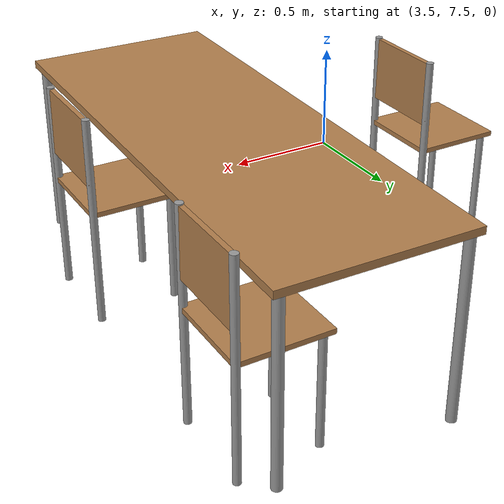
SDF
<sdf version="1.7">
 <world name="default">
  <model name="table_tavail_clone_1">
   <link name="link">
    <inertial>
     <mass>1</mass>
     <inertia><ixx>1</ixx><ixy>0</ixy><ixz>0</ixz><iyy>1</iyy><iyz>0</iyz><izz>1</izz></inertia>
    </inertial>
    <visual name="back_right_leg">
     <pose>-0.97 -0.34 0.5 0 -0 0</pose>
     <geometry><cylinder><radius>0.02</radius><length>0.75</length></cylinder></geometry>
     <material>
      <script><uri>file://media/materials/scripts/gazebo.material</uri><name>Gazebo/Grey</name></script>
      <shader type="pixel"><normal_map>__default__</normal_map></shader>
      <ambient>0.3 0.3 0.3 1</ambient>
      <diffuse>0.7 0.7 0.7 1</diffuse>
      <specular>0.01 0.01 0.01 1</specular>
      <emissive>0 0 0 1</emissive>
     </material>
    </visual>
    <visual name="front_right_leg">
     <pose>0.97 -0.34 0.5 0 -0 0</pose>
     <geometry><cylinder><radius>0.02</radius><length>0.75</length></cylinder></geometry>
     <material>
      <script><uri>file://media/materials/scripts/gazebo.material</uri><name>Gazebo/Grey</name></script>
      <shader type="pixel"><normal_map>__default__</normal_map></shader>
      <ambient>0.3 0.3 0.3 1</ambient>
      <diffuse>0.7 0.7 0.7 1</diffuse>
      <specular>0.01 0.01 0.01 1</specular>
      <emissive>0 0 0 1</emissive>
     </material>
    </visual>
    <visual name="back_left_leg">
     <pose>-0.97 0.34 0.5 0 -0 0</pose>
     <geometry><cylinder><radius>0.02</radius><length>0.75</length></cylinder></geometry>
     <material>
      <script><uri>file://media/materials/scripts/gazebo.material</uri><name>Gazebo/Grey</name></script>
      <shader type="pixel"><normal_map>__default__</normal_map></shader>
      <ambient>0.3 0.3 0.3 1</ambient>
      <diffuse>0.7 0.7 0.7 1</diffuse>
      <specular>0.01 0.01 0.01 1</specular>
      <emissive>0 0 0 1</emissive>
     </material>
    </visual>
    <visual name="front_left_leg">
     <pose>0.97 0.34 0.5 0 -0 0</pose>
     <geometry><cylinder><radius>0.02</radius><length>0.75</length></cylinder></geometry>
     <material>
      <script><uri>file://media/materials/scripts/gazebo.material</uri><name>Gazebo/Grey</name></script>
      <shader type="pixel"><normal_map>__default__</normal_map></shader>
      <ambient>0.3 0.3 0.3 1</ambient>
      <diffuse>0.7 0.7 0.7 1</diffuse>
      <specular>0.01 0.01 0.01 1</specular>
      <emissive>0 0 0 1</emissive>
     </material>
    </visual>
    <visual name="visual1">
     <pose>0 0 0.87 0 -0 0</pose>
     <geometry><box><size>2 0.75 0.03</size></box></geometry>
     <material>
      <script><uri>file://media/materials/scripts/gazebo.material</uri><name>Gazebo/Wood</name></script>
      <shader type="pixel"><normal_map>__default__</normal_map></shader>
      <ambient>1 1 1 1</ambient>
      <diffuse>1 1 1 1</diffuse>
      <specular>0.2 0.2 0.2 1</specular>
      <emissive>0 0 0 1</emissive>
     </material>
    </visual>
    <collision name="back_left_leg">
     <pose>-0.97 0.34 0.5 0 -0 0</pose>
     <geometry><cylinder><radius>0.02</radius><length>0.75</length></cylinder></geometry>
     <surface>
      <friction>
       <ode><mu>1</mu><mu2>1</mu2><fdir1>0 0 0</fdir1><slip1>0</slip1><slip2>0</slip2></ode>
       <torsional>
        <coefficient>1</coefficient>
        <patch_radius>0</patch_radius>
        <surface_radius>0</surface_radius>
        <use_patch_radius>1</use_patch_radius>
        <ode><slip>0</slip></ode>
       </torsional>
      </friction>
      <bounce><restitution_coefficient>0</restitution_coefficient><threshold>1e+06</threshold></bounce>
      <contact>
       <collide_without_contact>0</collide_without_contact>
       <collide_without_contact_bitmask>1</collide_without_contact_bitmask>
       <collide_bitmask>1</collide_bitmask>
       <ode>
        <soft_cfm>0</soft_cfm>
        <soft_erp>0.2</soft_erp>
        <kp>1e+13</kp>
        <kd>1</kd>
        <max_vel>0.01</max_vel>
        <min_depth>0</min_depth>
       </ode>
       <bullet>
        <split_impulse>1</split_impulse>
        <split_impulse_penetration_threshold>-0.01</split_impulse_penetration_threshold>
        <soft_cfm>0</soft_cfm>
        <soft_erp>0.2</soft_erp>
        <kp>1e+13</kp>
        <kd>1</kd>
       </bullet>
      </contact>
     </surface>
    </collision>
    <collision name="surface">
     <pose>0 0 0.87 0 -0 0</pose>
     <geometry><box><size>2 0.75 0.03</size></box></geometry>
     <surface>
      <friction>
       <ode><mu>0.6</mu><mu2>0.6</mu2><fdir1>0 0 0</fdir1><slip1>0</slip1><slip2>0</slip2></ode>
       <torsional>
        <coefficient>1</coefficient>
        <patch_radius>0</patch_radius>
        <surface_radius>0</surface_radius>
        <use_patch_radius>1</use_patch_radius>
        <ode><slip>0</slip></ode>
       </torsional>
      </friction>
      <bounce><restitution_coefficient>0</restitution_coefficient><threshold>1e+06</threshold></bounce>
      <contact>
       <collide_without_contact>0</collide_without_contact>
       <collide_without_contact_bitmask>1</collide_without_contact_bitmask>
       <collide_bitmask>1</collide_bitmask>
       <ode>
        <soft_cfm>0</soft_cfm>
        <soft_erp>0.2</soft_erp>
        <kp>1e+13</kp>
        <kd>1</kd>
        <max_vel>0.01</max_vel>
        <min_depth>0</min_depth>
       </ode>
       <bullet>
        <split_impulse>1</split_impulse>
        <split_impulse_penetration_threshold>-0.01</split_impulse_penetration_threshold>
        <soft_cfm>0</soft_cfm>
        <soft_erp>0.2</soft_erp>
        <kp>1e+13</kp>
        <kd>1</kd>
       </bullet>
      </contact>
     </surface>
    </collision>
    <collision name="back_right_leg">
     <pose>-0.97 -0.34 0.5 0 -0 0</pose>
     <geometry><cylinder><radius>0.02</radius><length>0.75</length></cylinder></geometry>
     <surface>
      <friction>
       <ode><mu>1</mu><mu2>1</mu2><fdir1>0 0 0</fdir1><slip1>0</slip1><slip2>0</slip2></ode>
       <torsional>
        <coefficient>1</coefficient>
        <patch_radius>0</patch_radius>
        <surface_radius>0</surface_radius>
        <use_patch_radius>1</use_patch_radius>
        <ode><slip>0</slip></ode>
       </torsional>
      </friction>
      <bounce><restitution_coefficient>0</restitution_coefficient><threshold>1e+06</threshold></bounce>
      <contact>
       <collide_without_contact>0</collide_without_contact>
       <collide_without_contact_bitmask>1</collide_without_contact_bitmask>
       <collide_bitmask>1</collide_bitmask>
       <ode>
        <soft_cfm>0</soft_cfm>
        <soft_erp>0.2</soft_erp>
        <kp>1e+13</kp>
        <kd>1</kd>
        <max_vel>0.01</max_vel>
        <min_depth>0</min_depth>
       </ode>
       <bullet>
        <split_impulse>1</split_impulse>
        <split_impulse_penetration_threshold>-0.01</split_impulse_penetration_threshold>
        <soft_cfm>0</soft_cfm>
        <soft_erp>0.2</soft_erp>
        <kp>1e+13</kp>
        <kd>1</kd>
       </bullet>
      </contact>
     </surface>
    </collision>
    <collision name="front_left_leg">
     <pose>0.97 0.34 0.5 0 -0 0</pose>
     <geometry><cylinder><radius>0.02</radius><length>0.75</length></cylinder></geometry>
     <surface>
      <friction>
       <ode><mu>1</mu><mu2>1</mu2><fdir1>0 0 0</fdir1><slip1>0</slip1><slip2>0</slip2></ode>
       <torsional>
        <coefficient>1</coefficient>
        <patch_radius>0</patch_radius>
        <surface_radius>0</surface_radius>
        <use_patch_radius>1</use_patch_radius>
        <ode><slip>0</slip></ode>
       </torsional>
      </friction>
      <bounce><restitution_coefficient>0</restitution_coefficient><threshold>1e+06</threshold></bounce>
      <contact>
       <collide_without_contact>0</collide_without_contact>
       <collide_without_contact_bitmask>1</collide_without_contact_bitmask>
       <collide_bitmask>1</collide_bitmask>
       <ode>
        <soft_cfm>0</soft_cfm>
        <soft_erp>0.2</soft_erp>
        <kp>1e+13</kp>
        <kd>1</kd>
        <max_vel>0.01</max_vel>
        <min_depth>0</min_depth>
       </ode>
       <bullet>
        <split_impulse>1</split_impulse>
        <split_impulse_penetration_threshold>-0.01</split_impulse_penetration_threshold>
        <soft_cfm>0</soft_cfm>
        <soft_erp>0.2</soft_erp>
        <kp>1e+13</kp>
        <kd>1</kd>
       </bullet>
      </contact>
     </surface>
    </collision>
    <collision name="front_right_leg">
     <pose>0.97 0.34 0.5 0 -0 0</pose>
     <geometry><cylinder><radius>0.02</radius><length>0.75</length></cylinder></geometry>
     <surface>
      <friction>
       <ode><mu>1</mu><mu2>1</mu2><fdir1>0 0 0</fdir1><slip1>0</slip1><slip2>0</slip2></ode>
       <torsional>
        <coefficient>1</coefficient>
        <patch_radius>0</patch_radius>
        <surface_radius>0</surface_radius>
        <use_patch_radius>1</use_patch_radius>
        <ode><slip>0</slip></ode>
       </torsional>
      </friction>
      <bounce><restitution_coefficient>0</restitution_coefficient><threshold>1e+06</threshold></bounce>
      <contact>
       <collide_without_contact>0</collide_without_contact>
       <collide_without_contact_bitmask>1</collide_without_contact_bitmask>
       <collide_bitmask>1</collide_bitmask>
       <ode>
        <soft_cfm>0</soft_cfm>
        <soft_erp>0.2</soft_erp>
        <kp>1e+13</kp>
        <kd>1</kd>
        <max_vel>0.01</max_vel>
        <min_depth>0</min_depth>
       </ode>
       <bullet>
        <split_impulse>1</split_impulse>
        <split_impulse_penetration_threshold>-0.01</split_impulse_penetration_threshold>
        <soft_cfm>0</soft_cfm>
        <soft_erp>0.2</soft_erp>
        <kp>1e+13</kp>
        <kd>1</kd>
       </bullet>
      </contact>
     </surface>
    </collision>
   </link>
   <static>1</static>
   <pose>4.63587 8.55934 -0.134214 0 -0 1.55</pose>
  </model>
  <model name="chair_mod_0_clone_10">
   <link name="link">
    <inertial>
     <mass>1</mass>
     <inertia><ixx>1</ixx><ixy>0</ixy><ixz>0</ixz><iyy>1</iyy><iyz>0</iyz><izz>1</izz></inertia>
    </inertial>
    <visual name="back_right_leg">
     <pose>-0.17 -0.17 0.42 0 -0 0</pose>
     <geometry><cylinder><radius>0.015</radius><length>0.84</length></cylinder></geometry>
     <material>
      <script><uri>file://media/materials/scripts/gazebo.material</uri><name>Gazebo/Grey</name></script>
      <shader type="pixel"><normal_map>__default__</normal_map></shader>
      <ambient>0.3 0.3 0.3 1</ambient>
      <diffuse>0.7 0.7 0.7 1</diffuse>
      <specular>0.01 0.01 0.01 1</specular>
      <emissive>0 0 0 1</emissive>
     </material>
    </visual>
    <visual name="back_left_leg">
     <pose>-0.15 0.15 0.23 0 -0 0</pose>
     <geometry><cylinder><radius>0.015</radius><length>0.46</length></cylinder></geometry>
     <material>
      <script><uri>file://media/materials/scripts/gazebo.material</uri><name>Gazebo/Grey</name></script>
      <shader type="pixel"><normal_map>__default__</normal_map></shader>
      <ambient>0.3 0.3 0.3 1</ambient>
      <diffuse>0.7 0.7 0.7 1</diffuse>
      <specular>0.01 0.01 0.01 1</specular>
      <emissive>0 0 0 1</emissive>
     </material>
    </visual>
    <visual name="visual1">
     <pose>0 0 0.46 0 -0 0</pose>
     <geometry><box><size>0.36 0.36 0.02</size></box></geometry>
     <material>
      <script><uri>file://media/materials/scripts/gazebo.material</uri><name>Gazebo/Wood</name></script>
      <shader type="pixel"><normal_map>__default__</normal_map></shader>
      <ambient>1 1 1 1</ambient>
      <diffuse>1 1 1 1</diffuse>
      <specular>0.2 0.2 0.2 1</specular>
      <emissive>0 0 0 1</emissive>
     </material>
    </visual>
    <visual name="ModelPreview_1::link::visual_5">
     <pose>0 -0.17 0.705 1.56 -0 0</pose>
     <geometry><box><size>0.36 0.26 0.02</size></box></geometry>
     <material>
      <script><uri>file://media/materials/scripts/gazebo.material</uri><name>Gazebo/Wood</name></script>
      <shader type="pixel"><normal_map>__default__</normal_map></shader>
      <ambient>1 1 1 1</ambient>
      <diffuse>1 1 1 1</diffuse>
      <specular>0.2 0.2 0.2 1</specular>
      <emissive>0 0 0 1</emissive>
     </material>
    </visual>
    <visual name="front_left_leg">
     <pose>0.15 0.15 0.23 0 -0 0</pose>
     <geometry><cylinder><radius>0.015</radius><length>0.46</length></cylinder></geometry>
     <material>
      <script><uri>file://media/materials/scripts/gazebo.material</uri><name>Gazebo/Grey</name></script>
      <shader type="pixel"><normal_map>__default__</normal_map></shader>
      <ambient>0.3 0.3 0.3 1</ambient>
      <diffuse>0.7 0.7 0.7 1</diffuse>
      <specular>0.01 0.01 0.01 1</specular>
      <emissive>0 0 0 1</emissive>
     </material>
    </visual>
    <visual name="front_right_leg">
     <pose>0.17 -0.17 0.42 0 -0 0</pose>
     <geometry><cylinder><radius>0.015</radius><length>0.84</length></cylinder></geometry>
     <material>
      <script><uri>file://media/materials/scripts/gazebo.material</uri><name>Gazebo/Grey</name></script>
      <shader type="pixel"><normal_map>__default__</normal_map></shader>
      <ambient>0.3 0.3 0.3 1</ambient>
      <diffuse>0.7 0.7 0.7 1</diffuse>
      <specular>0.01 0.01 0.01 1</specular>
      <emissive>0 0 0 1</emissive>
     </material>
    </visual>
    <collision name="front_right_leg">
     <pose>0.17 -0.17 0.42 0 -0 0</pose>
     <geometry><cylinder><radius>0.015</radius><length>0.84</length></cylinder></geometry>
     <surface>
      <friction>
       <ode><mu>1</mu><mu2>1</mu2><fdir1>0 0 0</fdir1><slip1>0</slip1><slip2>0</slip2></ode>
       <torsional>
        <coefficient>1</coefficient>
        <patch_radius>0</patch_radius>
        <surface_radius>0</surface_radius>
        <use_patch_radius>1</use_patch_radius>
        <ode><slip>0</slip></ode>
       </torsional>
      </friction>
      <bounce><restitution_coefficient>0</restitution_coefficient><threshold>1e+06</threshold></bounce>
      <contact>
       <collide_without_contact>0</collide_without_contact>
       <collide_without_contact_bitmask>1</collide_without_contact_bitmask>
       <collide_bitmask>1</collide_bitmask>
       <ode>
        <soft_cfm>0</soft_cfm>
        <soft_erp>0.2</soft_erp>
        <kp>1e+13</kp>
        <kd>1</kd>
        <max_vel>0.01</max_vel>
        <min_depth>0</min_depth>
       </ode>
       <bullet>
        <split_impulse>1</split_impulse>
        <split_impulse_penetration_threshold>-0.01</split_impulse_penetration_threshold>
        <soft_cfm>0</soft_cfm>
        <soft_erp>0.2</soft_erp>
        <kp>1e+13</kp>
        <kd>1</kd>
       </bullet>
      </contact>
     </surface>
    </collision>
    <collision name="back_right_leg">
     <pose>-0.17 -0.17 0.42 0 -0 0</pose>
     <geometry><cylinder><radius>0.015</radius><length>0.84</length></cylinder></geometry>
     <surface>
      <friction>
       <ode><mu>1</mu><mu2>1</mu2><fdir1>0 0 0</fdir1><slip1>0</slip1><slip2>0</slip2></ode>
       <torsional>
        <coefficient>1</coefficient>
        <patch_radius>0</patch_radius>
        <surface_radius>0</surface_radius>
        <use_patch_radius>1</use_patch_radius>
        <ode><slip>0</slip></ode>
       </torsional>
      </friction>
      <bounce><restitution_coefficient>0</restitution_coefficient><threshold>1e+06</threshold></bounce>
      <contact>
       <collide_without_contact>0</collide_without_contact>
       <collide_without_contact_bitmask>1</collide_without_contact_bitmask>
       <collide_bitmask>1</collide_bitmask>
       <ode>
        <soft_cfm>0</soft_cfm>
        <soft_erp>0.2</soft_erp>
        <kp>1e+13</kp>
        <kd>1</kd>
        <max_vel>0.01</max_vel>
        <min_depth>0</min_depth>
       </ode>
       <bullet>
        <split_impulse>1</split_impulse>
        <split_impulse_penetration_threshold>-0.01</split_impulse_penetration_threshold>
        <soft_cfm>0</soft_cfm>
        <soft_erp>0.2</soft_erp>
        <kp>1e+13</kp>
        <kd>1</kd>
       </bullet>
      </contact>
     </surface>
    </collision>
    <collision name="back_left_leg">
     <pose>-0.15 0.15 0.23 0 -0 0</pose>
     <geometry><cylinder><radius>0.015</radius><length>0.46</length></cylinder></geometry>
     <surface>
      <friction>
       <ode><mu>1</mu><mu2>1</mu2><fdir1>0 0 0</fdir1><slip1>0</slip1><slip2>0</slip2></ode>
       <torsional>
        <coefficient>1</coefficient>
        <patch_radius>0</patch_radius>
        <surface_radius>0</surface_radius>
        <use_patch_radius>1</use_patch_radius>
        <ode><slip>0</slip></ode>
       </torsional>
      </friction>
      <bounce><restitution_coefficient>0</restitution_coefficient><threshold>1e+06</threshold></bounce>
      <contact>
       <collide_without_contact>0</collide_without_contact>
       <collide_without_contact_bitmask>1</collide_without_contact_bitmask>
       <collide_bitmask>1</collide_bitmask>
       <ode>
        <soft_cfm>0</soft_cfm>
        <soft_erp>0.2</soft_erp>
        <kp>1e+13</kp>
        <kd>1</kd>
        <max_vel>0.01</max_vel>
        <min_depth>0</min_depth>
       </ode>
       <bullet>
        <split_impulse>1</split_impulse>
        <split_impulse_penetration_threshold>-0.01</split_impulse_penetration_threshold>
        <soft_cfm>0</soft_cfm>
        <soft_erp>0.2</soft_erp>
        <kp>1e+13</kp>
        <kd>1</kd>
       </bullet>
      </contact>
     </surface>
    </collision>
    <collision name="collision_6">
     <pose>0 -0.17 0.705 1.56 -0 0</pose>
     <geometry><box><size>0.36 0.26 0.03</size></box></geometry>
     <surface>
      <friction>
       <ode><mu>1</mu><mu2>1</mu2><fdir1>0 0 0</fdir1><slip1>0</slip1><slip2>0</slip2></ode>
       <torsional>
        <coefficient>1</coefficient>
        <patch_radius>0</patch_radius>
        <surface_radius>0</surface_radius>
        <use_patch_radius>1</use_patch_radius>
        <ode><slip>0</slip></ode>
       </torsional>
      </friction>
      <bounce><restitution_coefficient>0</restitution_coefficient><threshold>1e+06</threshold></bounce>
      <contact>
       <collide_without_contact>0</collide_without_contact>
       <collide_without_contact_bitmask>1</collide_without_contact_bitmask>
       <collide_bitmask>1</collide_bitmask>
       <ode>
        <soft_cfm>0</soft_cfm>
        <soft_erp>0.2</soft_erp>
        <kp>1e+13</kp>
        <kd>1</kd>
        <max_vel>0.01</max_vel>
        <min_depth>0</min_depth>
       </ode>
       <bullet>
        <split_impulse>1</split_impulse>
        <split_impulse_penetration_threshold>-0.01</split_impulse_penetration_threshold>
        <soft_cfm>0</soft_cfm>
        <soft_erp>0.2</soft_erp>
        <kp>1e+13</kp>
        <kd>1</kd>
       </bullet>
      </contact>
     </surface>
    </collision>
    <collision name="surface">
     <pose>0 0 0.46 0 -0 0</pose>
     <geometry><box><size>0.36 0.36 0.03</size></box></geometry>
     <surface>
      <friction>
       <ode><mu>0.6</mu><mu2>0.6</mu2><fdir1>0 0 0</fdir1><slip1>0</slip1><slip2>0</slip2></ode>
       <torsional>
        <coefficient>1</coefficient>
        <patch_radius>0</patch_radius>
        <surface_radius>0</surface_radius>
        <use_patch_radius>1</use_patch_radius>
        <ode><slip>0</slip></ode>
       </torsional>
      </friction>
      <bounce><restitution_coefficient>0</restitution_coefficient><threshold>1e+06</threshold></bounce>
      <contact>
       <collide_without_contact>0</collide_without_contact>
       <collide_without_contact_bitmask>1</collide_without_contact_bitmask>
       <collide_bitmask>1</collide_bitmask>
       <ode>
        <soft_cfm>0</soft_cfm>
        <soft_erp>0.2</soft_erp>
        <kp>1e+13</kp>
        <kd>1</kd>
        <max_vel>0.01</max_vel>
        <min_depth>0</min_depth>
       </ode>
       <bullet>
        <split_impulse>1</split_impulse>
        <split_impulse_penetration_threshold>-0.01</split_impulse_penetration_threshold>
        <soft_cfm>0</soft_cfm>
        <soft_erp>0.2</soft_erp>
        <kp>1e+13</kp>
        <kd>1</kd>
       </bullet>
      </contact>
     </surface>
    </collision>
    <collision name="front_left_leg">
     <pose>0.15 0.15 0.23 0 -0 0</pose>
     <geometry><cylinder><radius>0.015</radius><length>0.46</length></cylinder></geometry>
     <surface>
      <friction>
       <ode><mu>1</mu><mu2>1</mu2><fdir1>0 0 0</fdir1><slip1>0</slip1><slip2>0</slip2></ode>
       <torsional>
        <coefficient>1</coefficient>
        <patch_radius>0</patch_radius>
        <surface_radius>0</surface_radius>
        <use_patch_radius>1</use_patch_radius>
        <ode><slip>0</slip></ode>
       </torsional>
      </friction>
      <bounce><restitution_coefficient>0</restitution_coefficient><threshold>1e+06</threshold></bounce>
      <contact>
       <collide_without_contact>0</collide_without_contact>
       <collide_without_contact_bitmask>1</collide_without_contact_bitmask>
       <collide_bitmask>1</collide_bitmask>
       <ode>
        <soft_cfm>0</soft_cfm>
        <soft_erp>0.2</soft_erp>
        <kp>1e+13</kp>
        <kd>1</kd>
        <max_vel>0.01</max_vel>
        <min_depth>0</min_depth>
       </ode>
       <bullet>
        <split_impulse>1</split_impulse>
        <split_impulse_penetration_threshold>-0.01</split_impulse_penetration_threshold>
        <soft_cfm>0</soft_cfm>
        <soft_erp>0.2</soft_erp>
        <kp>1e+13</kp>
        <kd>1</kd>
       </bullet>
      </contact>
     </surface>
    </collision>
   </link>
   <static>1</static>
   <pose>3.56521 8.4054 0 0 -0 1.5708</pose>
  </model>
  <model name="chair_mod_0_clone_11">
   <link name="link">
    <inertial>
     <mass>1</mass>
     <inertia><ixx>1</ixx><ixy>0</ixy><ixz>0</ixz><iyy>1</iyy><iyz>0</iyz><izz>1</izz></inertia>
    </inertial>
    <visual name="back_right_leg">
     <pose>-0.17 -0.17 0.42 0 -0 0</pose>
     <geometry><cylinder><radius>0.015</radius><length>0.84</length></cylinder></geometry>
     <material>
      <script><uri>file://media/materials/scripts/gazebo.material</uri><name>Gazebo/Grey</name></script>
      <shader type="pixel"><normal_map>__default__</normal_map></shader>
      <ambient>0.3 0.3 0.3 1</ambient>
      <diffuse>0.7 0.7 0.7 1</diffuse>
      <specular>0.01 0.01 0.01 1</specular>
      <emissive>0 0 0 1</emissive>
     </material>
    </visual>
    <visual name="back_left_leg">
     <pose>-0.15 0.15 0.23 0 -0 0</pose>
     <geometry><cylinder><radius>0.015</radius><length>0.46</length></cylinder></geometry>
     <material>
      <script><uri>file://media/materials/scripts/gazebo.material</uri><name>Gazebo/Grey</name></script>
      <shader type="pixel"><normal_map>__default__</normal_map></shader>
      <ambient>0.3 0.3 0.3 1</ambient>
      <diffuse>0.7 0.7 0.7 1</diffuse>
      <specular>0.01 0.01 0.01 1</specular>
      <emissive>0 0 0 1</emissive>
     </material>
    </visual>
    <visual name="visual1">
     <pose>0 0 0.46 0 -0 0</pose>
     <geometry><box><size>0.36 0.36 0.02</size></box></geometry>
     <material>
      <script><uri>file://media/materials/scripts/gazebo.material</uri><name>Gazebo/Wood</name></script>
      <shader type="pixel"><normal_map>__default__</normal_map></shader>
      <ambient>1 1 1 1</ambient>
      <diffuse>1 1 1 1</diffuse>
      <specular>0.2 0.2 0.2 1</specular>
      <emissive>0 0 0 1</emissive>
     </material>
    </visual>
    <visual name="ModelPreview_1::link::visual_5">
     <pose>0 -0.17 0.705 1.56 -0 0</pose>
     <geometry><box><size>0.36 0.26 0.02</size></box></geometry>
     <material>
      <script><uri>file://media/materials/scripts/gazebo.material</uri><name>Gazebo/Wood</name></script>
      <shader type="pixel"><normal_map>__default__</normal_map></shader>
      <ambient>1 1 1 1</ambient>
      <diffuse>1 1 1 1</diffuse>
      <specular>0.2 0.2 0.2 1</specular>
      <emissive>0 0 0 1</emissive>
     </material>
    </visual>
    <visual name="front_left_leg">
     <pose>0.15 0.15 0.23 0 -0 0</pose>
     <geometry><cylinder><radius>0.015</radius><length>0.46</length></cylinder></geometry>
     <material>
      <script><uri>file://media/materials/scripts/gazebo.material</uri><name>Gazebo/Grey</name></script>
      <shader type="pixel"><normal_map>__default__</normal_map></shader>
      <ambient>0.3 0.3 0.3 1</ambient>
      <diffuse>0.7 0.7 0.7 1</diffuse>
      <specular>0.01 0.01 0.01 1</specular>
      <emissive>0 0 0 1</emissive>
     </material>
    </visual>
    <visual name="front_right_leg">
     <pose>0.17 -0.17 0.42 0 -0 0</pose>
     <geometry><cylinder><radius>0.015</radius><length>0.84</length></cylinder></geometry>
     <material>
      <script><uri>file://media/materials/scripts/gazebo.material</uri><name>Gazebo/Grey</name></script>
      <shader type="pixel"><normal_map>__default__</normal_map></shader>
      <ambient>0.3 0.3 0.3 1</ambient>
      <diffuse>0.7 0.7 0.7 1</diffuse>
      <specular>0.01 0.01 0.01 1</specular>
      <emissive>0 0 0 1</emissive>
     </material>
    </visual>
    <collision name="front_right_leg">
     <pose>0.17 -0.17 0.42 0 -0 0</pose>
     <geometry><cylinder><radius>0.015</radius><length>0.84</length></cylinder></geometry>
     <surface>
      <friction>
       <ode><mu>1</mu><mu2>1</mu2><fdir1>0 0 0</fdir1><slip1>0</slip1><slip2>0</slip2></ode>
       <torsional>
        <coefficient>1</coefficient>
        <patch_radius>0</patch_radius>
        <surface_radius>0</surface_radius>
        <use_patch_radius>1</use_patch_radius>
        <ode><slip>0</slip></ode>
       </torsional>
      </friction>
      <bounce><restitution_coefficient>0</restitution_coefficient><threshold>1e+06</threshold></bounce>
      <contact>
       <collide_without_contact>0</collide_without_contact>
       <collide_without_contact_bitmask>1</collide_without_contact_bitmask>
       <collide_bitmask>1</collide_bitmask>
       <ode>
        <soft_cfm>0</soft_cfm>
        <soft_erp>0.2</soft_erp>
        <kp>1e+13</kp>
        <kd>1</kd>
        <max_vel>0.01</max_vel>
        <min_depth>0</min_depth>
       </ode>
       <bullet>
        <split_impulse>1</split_impulse>
        <split_impulse_penetration_threshold>-0.01</split_impulse_penetration_threshold>
        <soft_cfm>0</soft_cfm>
        <soft_erp>0.2</soft_erp>
        <kp>1e+13</kp>
        <kd>1</kd>
       </bullet>
      </contact>
     </surface>
    </collision>
    <collision name="back_right_leg">
     <pose>-0.17 -0.17 0.42 0 -0 0</pose>
     <geometry><cylinder><radius>0.015</radius><length>0.84</length></cylinder></geometry>
     <surface>
      <friction>
       <ode><mu>1</mu><mu2>1</mu2><fdir1>0 0 0</fdir1><slip1>0</slip1><slip2>0</slip2></ode>
       <torsional>
        <coefficient>1</coefficient>
        <patch_radius>0</patch_radius>
        <surface_radius>0</surface_radius>
        <use_patch_radius>1</use_patch_radius>
        <ode><slip>0</slip></ode>
       </torsional>
      </friction>
      <bounce><restitution_coefficient>0</restitution_coefficient><threshold>1e+06</threshold></bounce>
      <contact>
       <collide_without_contact>0</collide_without_contact>
       <collide_without_contact_bitmask>1</collide_without_contact_bitmask>
       <collide_bitmask>1</collide_bitmask>
       <ode>
        <soft_cfm>0</soft_cfm>
        <soft_erp>0.2</soft_erp>
        <kp>1e+13</kp>
        <kd>1</kd>
        <max_vel>0.01</max_vel>
        <min_depth>0</min_depth>
       </ode>
       <bullet>
        <split_impulse>1</split_impulse>
        <split_impulse_penetration_threshold>-0.01</split_impulse_penetration_threshold>
        <soft_cfm>0</soft_cfm>
        <soft_erp>0.2</soft_erp>
        <kp>1e+13</kp>
        <kd>1</kd>
       </bullet>
      </contact>
     </surface>
    </collision>
    <collision name="back_left_leg">
     <pose>-0.15 0.15 0.23 0 -0 0</pose>
     <geometry><cylinder><radius>0.015</radius><length>0.46</length></cylinder></geometry>
     <surface>
      <friction>
       <ode><mu>1</mu><mu2>1</mu2><fdir1>0 0 0</fdir1><slip1>0</slip1><slip2>0</slip2></ode>
       <torsional>
        <coefficient>1</coefficient>
        <patch_radius>0</patch_radius>
        <surface_radius>0</surface_radius>
        <use_patch_radius>1</use_patch_radius>
        <ode><slip>0</slip></ode>
       </torsional>
      </friction>
      <bounce><restitution_coefficient>0</restitution_coefficient><threshold>1e+06</threshold></bounce>
      <contact>
       <collide_without_contact>0</collide_without_contact>
       <collide_without_contact_bitmask>1</collide_without_contact_bitmask>
       <collide_bitmask>1</collide_bitmask>
       <ode>
        <soft_cfm>0</soft_cfm>
        <soft_erp>0.2</soft_erp>
        <kp>1e+13</kp>
        <kd>1</kd>
        <max_vel>0.01</max_vel>
        <min_depth>0</min_depth>
       </ode>
       <bullet>
        <split_impulse>1</split_impulse>
        <split_impulse_penetration_threshold>-0.01</split_impulse_penetration_threshold>
        <soft_cfm>0</soft_cfm>
        <soft_erp>0.2</soft_erp>
        <kp>1e+13</kp>
        <kd>1</kd>
       </bullet>
      </contact>
     </surface>
    </collision>
    <collision name="collision_6">
     <pose>0 -0.17 0.705 1.56 -0 0</pose>
     <geometry><box><size>0.36 0.26 0.03</size></box></geometry>
     <surface>
      <friction>
       <ode><mu>1</mu><mu2>1</mu2><fdir1>0 0 0</fdir1><slip1>0</slip1><slip2>0</slip2></ode>
       <torsional>
        <coefficient>1</coefficient>
        <patch_radius>0</patch_radius>
        <surface_radius>0</surface_radius>
        <use_patch_radius>1</use_patch_radius>
        <ode><slip>0</slip></ode>
       </torsional>
      </friction>
      <bounce><restitution_coefficient>0</restitution_coefficient><threshold>1e+06</threshold></bounce>
      <contact>
       <collide_without_contact>0</collide_without_contact>
       <collide_without_contact_bitmask>1</collide_without_contact_bitmask>
       <collide_bitmask>1</collide_bitmask>
       <ode>
        <soft_cfm>0</soft_cfm>
        <soft_erp>0.2</soft_erp>
        <kp>1e+13</kp>
        <kd>1</kd>
        <max_vel>0.01</max_vel>
        <min_depth>0</min_depth>
       </ode>
       <bullet>
        <split_impulse>1</split_impulse>
        <split_impulse_penetration_threshold>-0.01</split_impulse_penetration_threshold>
        <soft_cfm>0</soft_cfm>
        <soft_erp>0.2</soft_erp>
        <kp>1e+13</kp>
        <kd>1</kd>
       </bullet>
      </contact>
     </surface>
    </collision>
    <collision name="surface">
     <pose>0 0 0.46 0 -0 0</pose>
     <geometry><box><size>0.36 0.36 0.03</size></box></geometry>
     <surface>
      <friction>
       <ode><mu>0.6</mu><mu2>0.6</mu2><fdir1>0 0 0</fdir1><slip1>0</slip1><slip2>0</slip2></ode>
       <torsional>
        <coefficient>1</coefficient>
        <patch_radius>0</patch_radius>
        <surface_radius>0</surface_radius>
        <use_patch_radius>1</use_patch_radius>
        <ode><slip>0</slip></ode>
       </torsional>
      </friction>
      <bounce><restitution_coefficient>0</restitution_coefficient><threshold>1e+06</threshold></bounce>
      <contact>
       <collide_without_contact>0</collide_without_contact>
       <collide_without_contact_bitmask>1</collide_without_contact_bitmask>
       <collide_bitmask>1</collide_bitmask>
       <ode>
        <soft_cfm>0</soft_cfm>
        <soft_erp>0.2</soft_erp>
        <kp>1e+13</kp>
        <kd>1</kd>
        <max_vel>0.01</max_vel>
        <min_depth>0</min_depth>
       </ode>
       <bullet>
        <split_impulse>1</split_impulse>
        <split_impulse_penetration_threshold>-0.01</split_impulse_penetration_threshold>
        <soft_cfm>0</soft_cfm>
        <soft_erp>0.2</soft_erp>
        <kp>1e+13</kp>
        <kd>1</kd>
       </bullet>
      </contact>
     </surface>
    </collision>
    <collision name="front_left_leg">
     <pose>0.15 0.15 0.23 0 -0 0</pose>
     <geometry><cylinder><radius>0.015</radius><length>0.46</length></cylinder></geometry>
     <surface>
      <friction>
       <ode><mu>1</mu><mu2>1</mu2><fdir1>0 0 0</fdir1><slip1>0</slip1><slip2>0</slip2></ode>
       <torsional>
        <coefficient>1</coefficient>
        <patch_radius>0</patch_radius>
        <surface_radius>0</surface_radius>
        <use_patch_radius>1</use_patch_radius>
        <ode><slip>0</slip></ode>
       </torsional>
      </friction>
      <bounce><restitution_coefficient>0</restitution_coefficient><threshold>1e+06</threshold></bounce>
      <contact>
       <collide_without_contact>0</collide_without_contact>
       <collide_without_contact_bitmask>1</collide_without_contact_bitmask>
       <collide_bitmask>1</collide_bitmask>
       <ode>
        <soft_cfm>0</soft_cfm>
        <soft_erp>0.2</soft_erp>
        <kp>1e+13</kp>
        <kd>1</kd>
        <max_vel>0.01</max_vel>
        <min_depth>0</min_depth>
       </ode>
       <bullet>
        <split_impulse>1</split_impulse>
        <split_impulse_penetration_threshold>-0.01</split_impulse_penetration_threshold>
        <soft_cfm>0</soft_cfm>
        <soft_erp>0.2</soft_erp>
        <kp>1e+13</kp>
        <kd>1</kd>
       </bullet>
      </contact>
     </surface>
    </collision>
   </link>
   <static>1</static>
   <pose>4.92636 9.27832 0 0 -0 1.5708</pose>
  </model>
  <model name="chair_mod_0_clone_13">
   <link name="link">
    <inertial>
     <mass>1</mass>
     <inertia><ixx>1</ixx><ixy>0</ixy><ixz>0</ixz><iyy>1</iyy><iyz>0</iyz><izz>1</izz></inertia>
    </inertial>
    <visual name="back_right_leg">
     <pose>-0.17 -0.17 0.42 0 -0 0</pose>
     <geometry><cylinder><radius>0.015</radius><length>0.84</length></cylinder></geometry>
     <material>
      <script><uri>file://media/materials/scripts/gazebo.material</uri><name>Gazebo/Grey</name></script>
      <shader type="pixel"><normal_map>__default__</normal_map></shader>
      <ambient>0.3 0.3 0.3 1</ambient>
      <diffuse>0.7 0.7 0.7 1</diffuse>
      <specular>0.01 0.01 0.01 1</specular>
      <emissive>0 0 0 1</emissive>
     </material>
    </visual>
    <visual name="back_left_leg">
     <pose>-0.15 0.15 0.23 0 -0 0</pose>
     <geometry><cylinder><radius>0.015</radius><length>0.46</length></cylinder></geometry>
     <material>
      <script><uri>file://media/materials/scripts/gazebo.material</uri><name>Gazebo/Grey</name></script>
      <shader type="pixel"><normal_map>__default__</normal_map></shader>
      <ambient>0.3 0.3 0.3 1</ambient>
      <diffuse>0.7 0.7 0.7 1</diffuse>
      <specular>0.01 0.01 0.01 1</specular>
      <emissive>0 0 0 1</emissive>
     </material>
    </visual>
    <visual name="visual1">
     <pose>0 0 0.46 0 -0 0</pose>
     <geometry><box><size>0.36 0.36 0.02</size></box></geometry>
     <material>
      <script><uri>file://media/materials/scripts/gazebo.material</uri><name>Gazebo/Wood</name></script>
      <shader type="pixel"><normal_map>__default__</normal_map></shader>
      <ambient>1 1 1 1</ambient>
      <diffuse>1 1 1 1</diffuse>
      <specular>0.2 0.2 0.2 1</specular>
      <emissive>0 0 0 1</emissive>
     </material>
    </visual>
    <visual name="ModelPreview_1::link::visual_5">
     <pose>0 -0.17 0.705 1.56 -0 0</pose>
     <geometry><box><size>0.36 0.26 0.02</size></box></geometry>
     <material>
      <script><uri>file://media/materials/scripts/gazebo.material</uri><name>Gazebo/Wood</name></script>
      <shader type="pixel"><normal_map>__default__</normal_map></shader>
      <ambient>1 1 1 1</ambient>
      <diffuse>1 1 1 1</diffuse>
      <specular>0.2 0.2 0.2 1</specular>
      <emissive>0 0 0 1</emissive>
     </material>
    </visual>
    <visual name="front_left_leg">
     <pose>0.15 0.15 0.23 0 -0 0</pose>
     <geometry><cylinder><radius>0.015</radius><length>0.46</length></cylinder></geometry>
     <material>
      <script><uri>file://media/materials/scripts/gazebo.material</uri><name>Gazebo/Grey</name></script>
      <shader type="pixel"><normal_map>__default__</normal_map></shader>
      <ambient>0.3 0.3 0.3 1</ambient>
      <diffuse>0.7 0.7 0.7 1</diffuse>
      <specular>0.01 0.01 0.01 1</specular>
      <emissive>0 0 0 1</emissive>
     </material>
    </visual>
    <visual name="front_right_leg">
     <pose>0.17 -0.17 0.42 0 -0 0</pose>
     <geometry><cylinder><radius>0.015</radius><length>0.84</length></cylinder></geometry>
     <material>
      <script><uri>file://media/materials/scripts/gazebo.material</uri><name>Gazebo/Grey</name></script>
      <shader type="pixel"><normal_map>__default__</normal_map></shader>
      <ambient>0.3 0.3 0.3 1</ambient>
      <diffuse>0.7 0.7 0.7 1</diffuse>
      <specular>0.01 0.01 0.01 1</specular>
      <emissive>0 0 0 1</emissive>
     </material>
    </visual>
    <collision name="front_right_leg">
     <pose>0.17 -0.17 0.42 0 -0 0</pose>
     <geometry><cylinder><radius>0.015</radius><length>0.84</length></cylinder></geometry>
     <surface>
      <friction>
       <ode><mu>1</mu><mu2>1</mu2><fdir1>0 0 0</fdir1><slip1>0</slip1><slip2>0</slip2></ode>
       <torsional>
        <coefficient>1</coefficient>
        <patch_radius>0</patch_radius>
        <surface_radius>0</surface_radius>
        <use_patch_radius>1</use_patch_radius>
        <ode><slip>0</slip></ode>
       </torsional>
      </friction>
      <bounce><restitution_coefficient>0</restitution_coefficient><threshold>1e+06</threshold></bounce>
      <contact>
       <collide_without_contact>0</collide_without_contact>
       <collide_without_contact_bitmask>1</collide_without_contact_bitmask>
       <collide_bitmask>1</collide_bitmask>
       <ode>
        <soft_cfm>0</soft_cfm>
        <soft_erp>0.2</soft_erp>
        <kp>1e+13</kp>
        <kd>1</kd>
        <max_vel>0.01</max_vel>
        <min_depth>0</min_depth>
       </ode>
       <bullet>
        <split_impulse>1</split_impulse>
        <split_impulse_penetration_threshold>-0.01</split_impulse_penetration_threshold>
        <soft_cfm>0</soft_cfm>
        <soft_erp>0.2</soft_erp>
        <kp>1e+13</kp>
        <kd>1</kd>
       </bullet>
      </contact>
     </surface>
    </collision>
    <collision name="back_right_leg">
     <pose>-0.17 -0.17 0.42 0 -0 0</pose>
     <geometry><cylinder><radius>0.015</radius><length>0.84</length></cylinder></geometry>
     <surface>
      <friction>
       <ode><mu>1</mu><mu2>1</mu2><fdir1>0 0 0</fdir1><slip1>0</slip1><slip2>0</slip2></ode>
       <torsional>
        <coefficient>1</coefficient>
        <patch_radius>0</patch_radius>
        <surface_radius>0</surface_radius>
        <use_patch_radius>1</use_patch_radius>
        <ode><slip>0</slip></ode>
       </torsional>
      </friction>
      <bounce><restitution_coefficient>0</restitution_coefficient><threshold>1e+06</threshold></bounce>
      <contact>
       <collide_without_contact>0</collide_without_contact>
       <collide_without_contact_bitmask>1</collide_without_contact_bitmask>
       <collide_bitmask>1</collide_bitmask>
       <ode>
        <soft_cfm>0</soft_cfm>
        <soft_erp>0.2</soft_erp>
        <kp>1e+13</kp>
        <kd>1</kd>
        <max_vel>0.01</max_vel>
        <min_depth>0</min_depth>
       </ode>
       <bullet>
        <split_impulse>1</split_impulse>
        <split_impulse_penetration_threshold>-0.01</split_impulse_penetration_threshold>
        <soft_cfm>0</soft_cfm>
        <soft_erp>0.2</soft_erp>
        <kp>1e+13</kp>
        <kd>1</kd>
       </bullet>
      </contact>
     </surface>
    </collision>
    <collision name="back_left_leg">
     <pose>-0.15 0.15 0.23 0 -0 0</pose>
     <geometry><cylinder><radius>0.015</radius><length>0.46</length></cylinder></geometry>
     <surface>
      <friction>
       <ode><mu>1</mu><mu2>1</mu2><fdir1>0 0 0</fdir1><slip1>0</slip1><slip2>0</slip2></ode>
       <torsional>
        <coefficient>1</coefficient>
        <patch_radius>0</patch_radius>
        <surface_radius>0</surface_radius>
        <use_patch_radius>1</use_patch_radius>
        <ode><slip>0</slip></ode>
       </torsional>
      </friction>
      <bounce><restitution_coefficient>0</restitution_coefficient><threshold>1e+06</threshold></bounce>
      <contact>
       <collide_without_contact>0</collide_without_contact>
       <collide_without_contact_bitmask>1</collide_without_contact_bitmask>
       <collide_bitmask>1</collide_bitmask>
       <ode>
        <soft_cfm>0</soft_cfm>
        <soft_erp>0.2</soft_erp>
        <kp>1e+13</kp>
        <kd>1</kd>
        <max_vel>0.01</max_vel>
        <min_depth>0</min_depth>
       </ode>
       <bullet>
        <split_impulse>1</split_impulse>
        <split_impulse_penetration_threshold>-0.01</split_impulse_penetration_threshold>
        <soft_cfm>0</soft_cfm>
        <soft_erp>0.2</soft_erp>
        <kp>1e+13</kp>
        <kd>1</kd>
       </bullet>
      </contact>
     </surface>
    </collision>
    <collision name="collision_6">
     <pose>0 -0.17 0.705 1.56 -0 0</pose>
     <geometry><box><size>0.36 0.26 0.03</size></box></geometry>
     <surface>
      <friction>
       <ode><mu>1</mu><mu2>1</mu2><fdir1>0 0 0</fdir1><slip1>0</slip1><slip2>0</slip2></ode>
       <torsional>
        <coefficient>1</coefficient>
        <patch_radius>0</patch_radius>
        <surface_radius>0</surface_radius>
        <use_patch_radius>1</use_patch_radius>
        <ode><slip>0</slip></ode>
       </torsional>
      </friction>
      <bounce><restitution_coefficient>0</restitution_coefficient><threshold>1e+06</threshold></bounce>
      <contact>
       <collide_without_contact>0</collide_without_contact>
       <collide_without_contact_bitmask>1</collide_without_contact_bitmask>
       <collide_bitmask>1</collide_bitmask>
       <ode>
        <soft_cfm>0</soft_cfm>
        <soft_erp>0.2</soft_erp>
        <kp>1e+13</kp>
        <kd>1</kd>
        <max_vel>0.01</max_vel>
        <min_depth>0</min_depth>
       </ode>
       <bullet>
        <split_impulse>1</split_impulse>
        <split_impulse_penetration_threshold>-0.01</split_impulse_penetration_threshold>
        <soft_cfm>0</soft_cfm>
        <soft_erp>0.2</soft_erp>
        <kp>1e+13</kp>
        <kd>1</kd>
       </bullet>
      </contact>
     </surface>
    </collision>
    <collision name="surface">
     <pose>0 0 0.46 0 -0 0</pose>
     <geometry><box><size>0.36 0.36 0.03</size></box></geometry>
     <surface>
      <friction>
       <ode><mu>0.6</mu><mu2>0.6</mu2><fdir1>0 0 0</fdir1><slip1>0</slip1><slip2>0</slip2></ode>
       <torsional>
        <coefficient>1</coefficient>
        <patch_radius>0</patch_radius>
        <surface_radius>0</surface_radius>
        <use_patch_radius>1</use_patch_radius>
        <ode><slip>0</slip></ode>
       </torsional>
      </friction>
      <bounce><restitution_coefficient>0</restitution_coefficient><threshold>1e+06</threshold></bounce>
      <contact>
       <collide_without_contact>0</collide_without_contact>
       <collide_without_contact_bitmask>1</collide_without_contact_bitmask>
       <collide_bitmask>1</collide_bitmask>
       <ode>
        <soft_cfm>0</soft_cfm>
        <soft_erp>0.2</soft_erp>
        <kp>1e+13</kp>
        <kd>1</kd>
        <max_vel>0.01</max_vel>
        <min_depth>0</min_depth>
       </ode>
       <bullet>
        <split_impulse>1</split_impulse>
        <split_impulse_penetration_threshold>-0.01</split_impulse_penetration_threshold>
        <soft_cfm>0</soft_cfm>
        <soft_erp>0.2</soft_erp>
        <kp>1e+13</kp>
        <kd>1</kd>
       </bullet>
      </contact>
     </surface>
    </collision>
    <collision name="front_left_leg">
     <pose>0.15 0.15 0.23 0 -0 0</pose>
     <geometry><cylinder><radius>0.015</radius><length>0.46</length></cylinder></geometry>
     <surface>
      <friction>
       <ode><mu>1</mu><mu2>1</mu2><fdir1>0 0 0</fdir1><slip1>0</slip1><slip2>0</slip2></ode>
       <torsional>
        <coefficient>1</coefficient>
        <patch_radius>0</patch_radius>
        <surface_radius>0</surface_radius>
        <use_patch_radius>1</use_patch_radius>
        <ode><slip>0</slip></ode>
       </torsional>
      </friction>
      <bounce><restitution_coefficient>0</restitution_coefficient><threshold>1e+06</threshold></bounce>
      <contact>
       <collide_without_contact>0</collide_without_contact>
       <collide_without_contact_bitmask>1</collide_without_contact_bitmask>
       <collide_bitmask>1</collide_bitmask>
       <ode>
        <soft_cfm>0</soft_cfm>
        <soft_erp>0.2</soft_erp>
        <kp>1e+13</kp>
        <kd>1</kd>
        <max_vel>0.01</max_vel>
        <min_depth>0</min_depth>
       </ode>
       <bullet>
        <split_impulse>1</split_impulse>
        <split_impulse_penetration_threshold>-0.01</split_impulse_penetration_threshold>
        <soft_cfm>0</soft_cfm>
        <soft_erp>0.2</soft_erp>
        <kp>1e+13</kp>
        <kd>1</kd>
       </bullet>
      </contact>
     </surface>
    </collision>
   </link>
   <static>1</static>
   <pose>4.93732 8.23223 0 0 -0 1.5708</pose>
  </model>
 </world>
</sdf>
